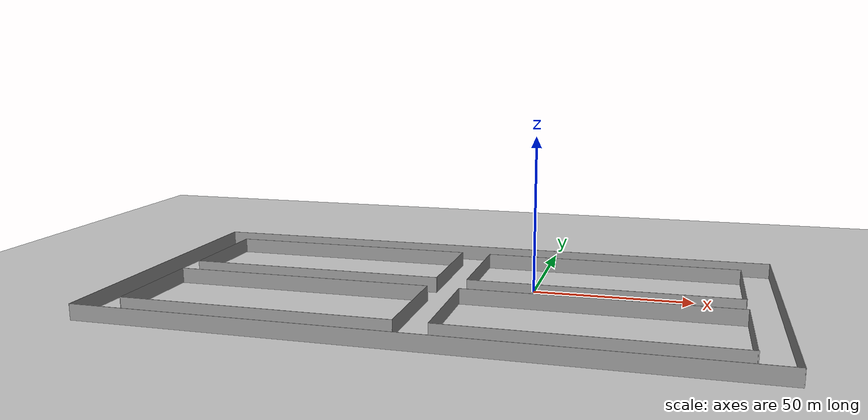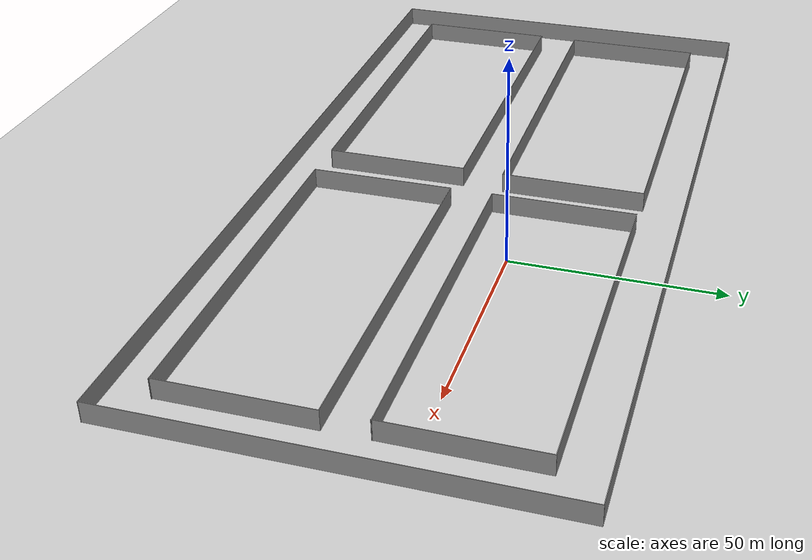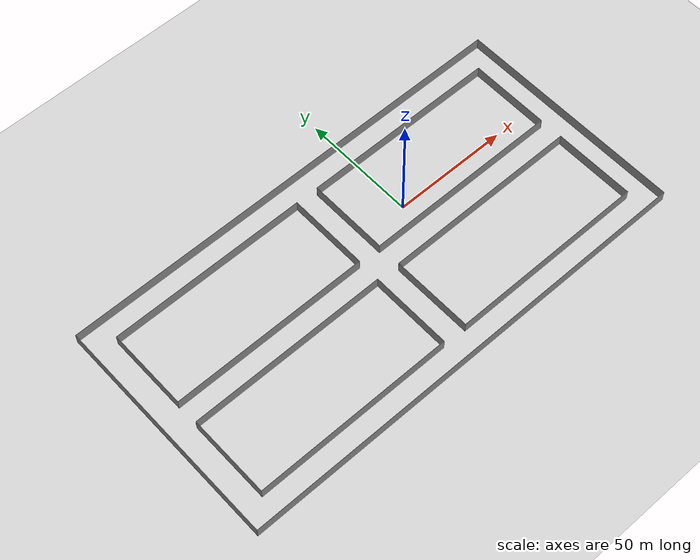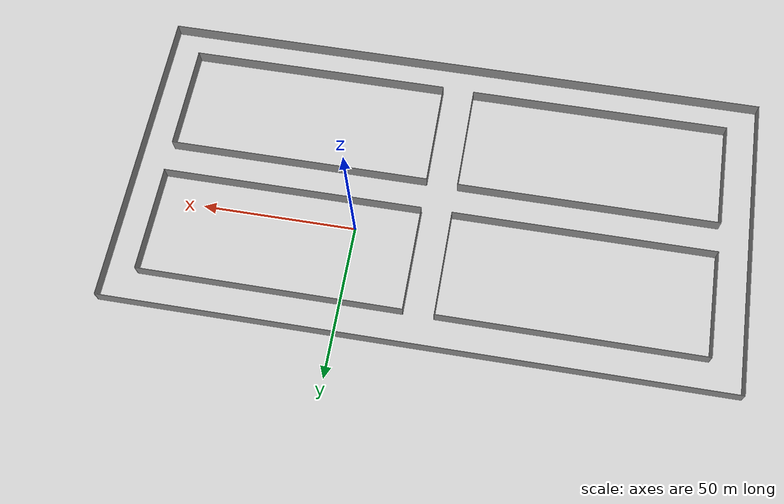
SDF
<?xml version="1.0"?>
<sdf version="1.6">
  <world name="default">
    <plugin
      filename="gz-sim-physics-system"
      name="gz::sim::systems::Physics">
    </plugin>
    <plugin
      filename="gz-sim-user-commands-system"
      name="gz::sim::systems::UserCommands">
    </plugin>
    <plugin
      filename="gz-sim-scene-broadcaster-system"
      name="gz::sim::systems::SceneBroadcaster">
    </plugin>
    <plugin
      filename="gz-sim-sensors-system"
      name="gz::sim::systems::Sensors">
      <render_engine>ogre2</render_engine>
    </plugin>
    <plugin
      filename="gz-sim-imu-system"
      name="gz::sim::systems::Imu">
    </plugin>

    <include>
      <uri>
        https://fuel.gazebosim.org/1.0/OpenRobotics/models/Ground Plane
      </uri>
    </include>

    <include>
      <uri>
        https://fuel.gazebosim.org/1.0/OpenRobotics/models/Sun
      </uri>
    </include>
    <include>
      <!-- make the location setting to something like this : filename="package://roshai_gazebo ... -->
      <uri>
        /home/roshai/sim_ws/src/roshai_pkgs/roshai_gazebo/worlds/Model4
      </uri>
     </include>
    <scene>
      <shadows>false</shadows>
    </scene>

    <gui fullscreen='0'>
      <camera name='user_camera'>
        <pose frame=''>0.319654 -0.235002 9.29441 0 1.5138 0.009599</pose>
        <view_controller>orbit</view_controller>
        <projection_type>perspective</projection_type>
      </camera>
    </gui>

    <physics type="ode">
      <real_time_update_rate>1000.0</real_time_update_rate>
      <max_step_size>0.001</max_step_size>
      <real_time_factor>1</real_time_factor>
      <ode>
        <solver>
          <type>quick</type>
          <iters>150</iters>
          <precon_iters>0</precon_iters>
          <sor>1.400000</sor>
          <use_dynamic_moi_rescaling>1</use_dynamic_moi_rescaling>
        </solver>
        <constraints>
          <cfm>0.00001</cfm>
          <erp>0.2</erp>
          <contact_max_correcting_vel>2000.000000</contact_max_correcting_vel>
          <contact_surface_layer>0.01000</contact_surface_layer>
        </constraints>
      </ode>
    </physics>

  </world>
</sdf>

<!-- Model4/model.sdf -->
<sdf version='1.7'>
  <model name='Model4'>
    <pose>-25.3121 -13.5777 0 0 -0 0</pose>
    <link name='Wall_102'>
      <collision name='Wall_102_Collision'>
        <geometry>
          <box>
            <size>85 0.15 5</size>
          </box>
        </geometry>
        <pose>0 0 2.5 0 -0 0</pose>
      </collision>
      <visual name='Wall_102_Visual'>
        <pose>0 0 2.5 0 -0 0</pose>
        <geometry>
          <box>
            <size>85 0.15 5</size>
          </box>
        </geometry>
        <material>
          <script>
            <uri>file://media/materials/scripts/gazebo.material</uri>
            <name>Gazebo/Grey</name>
          </script>
          <ambient>1 1 1 1</ambient>
        </material>
        <meta>
          <layer>0</layer>
        </meta>
      </visual>
      <pose>-47.154 4.80195 0 0 -0 -5e-06</pose>
    </link>
    <link name='Wall_104'>
      <collision name='Wall_104_Collision'>
        <geometry>
          <box>
            <size>35 0.15 5</size>
          </box>
        </geometry>
        <pose>0 0 2.5 0 -0 0</pose>
      </collision>
      <visual name='Wall_104_Visual'>
        <pose>0 0 2.5 0 -0 0</pose>
        <geometry>
          <box>
            <size>35 0.15 5</size>
          </box>
        </geometry>
        <material>
          <script>
            <uri>file://media/materials/scripts/gazebo.material</uri>
            <name>Gazebo/Grey</name>
          </script>
          <ambient>1 1 1 1</ambient>
        </material>
        <meta>
          <layer>0</layer>
        </meta>
      </visual>
      <pose>-4.72888 22.2267 0 0 -0 -1.5708</pose>
    </link>
    <link name='Wall_110'>
      <collision name='Wall_110_Collision'>
        <geometry>
          <box>
            <size>85 0.15 5</size>
          </box>
        </geometry>
        <pose>0 0 2.5 0 -0 0</pose>
      </collision>
      <visual name='Wall_110_Visual'>
        <pose>0 0 2.5 0 -0 0</pose>
        <geometry>
          <box>
            <size>85 0.15 5</size>
          </box>
        </geometry>
        <material>
          <script>
            <uri>file://media/materials/scripts/gazebo.material</uri>
            <name>Gazebo/Grey</name>
          </script>
          <ambient>1 1 1 1</ambient>
        </material>
        <meta>
          <layer>0</layer>
        </meta>
      </visual>
      <pose>-47.3691 -5.33039 0 0 -0 0</pose>
    </link>
    <link name='Wall_112'>
      <collision name='Wall_112_Collision'>
        <geometry>
          <box>
            <size>35 0.15 5</size>
          </box>
        </geometry>
        <pose>0 0 2.5 0 -0 0</pose>
      </collision>
      <visual name='Wall_112_Visual'>
        <pose>0 0 2.5 0 -0 0</pose>
        <geometry>
          <box>
            <size>35 0.15 5</size>
          </box>
        </geometry>
        <material>
          <script>
            <uri>file://media/materials/scripts/gazebo.material</uri>
            <name>Gazebo/Grey</name>
          </script>
          <ambient>1 1 1 1</ambient>
        </material>
        <meta>
          <layer>0</layer>
        </meta>
      </visual>
      <pose>-89.7941 -22.7554 0 0 -0 -1.5708</pose>
    </link>
    <link name='Wall_116'>
      <collision name='Wall_116_Collision'>
        <geometry>
          <box>
            <size>85 0.15 5</size>
          </box>
        </geometry>
        <pose>0 0 2.5 0 -0 0</pose>
      </collision>
      <visual name='Wall_116_Visual'>
        <pose>0 0 2.5 0 -0 0</pose>
        <geometry>
          <box>
            <size>85 0.15 5</size>
          </box>
        </geometry>
        <material>
          <script>
            <uri>file://media/materials/scripts/gazebo.material</uri>
            <name>Gazebo/Grey</name>
          </script>
          <ambient>1 1 1 1</ambient>
        </material>
        <meta>
          <layer>0</layer>
        </meta>
      </visual>
      <pose>-47.3691 -40.1804 0 0 -0 0</pose>
    </link>
    <link name='Wall_118'>
      <collision name='Wall_118_Collision'>
        <geometry>
          <box>
            <size>35 0.15 5</size>
          </box>
        </geometry>
        <pose>0 0 2.5 0 -0 0</pose>
      </collision>
      <visual name='Wall_118_Visual'>
        <pose>0 0 2.5 0 -0 0</pose>
        <geometry>
          <box>
            <size>35 0.15 5</size>
          </box>
        </geometry>
        <material>
          <script>
            <uri>file://media/materials/scripts/gazebo.material</uri>
            <name>Gazebo/Grey</name>
          </script>
          <ambient>1 1 1 1</ambient>
        </material>
        <meta>
          <layer>0</layer>
        </meta>
      </visual>
      <pose>-4.94413 -22.7554 0 0 -0 -1.5708</pose>
    </link>
    <link name='Wall_125'>
      <collision name='Wall_125_Collision'>
        <geometry>
          <box>
            <size>35 0.15 5</size>
          </box>
        </geometry>
        <pose>0 0 2.5 0 -0 0</pose>
      </collision>
      <visual name='Wall_125_Visual'>
        <pose>0 0 2.5 0 -0 0</pose>
        <geometry>
          <box>
            <size>35 0.15 5</size>
          </box>
        </geometry>
        <material>
          <script>
            <uri>file://media/materials/scripts/gazebo.material</uri>
            <name>Gazebo/Grey</name>
          </script>
          <ambient>1 1 1 1</ambient>
        </material>
        <meta>
          <layer>0</layer>
        </meta>
      </visual>
      <pose>5.18453 22.1453 0 0 -0 -1.5708</pose>
    </link>
    <link name='Wall_127'>
      <collision name='Wall_127_Collision'>
        <geometry>
          <box>
            <size>85 0.15 5</size>
          </box>
        </geometry>
        <pose>0 0 2.5 0 -0 0</pose>
      </collision>
      <visual name='Wall_127_Visual'>
        <pose>0 0 2.5 0 -0 0</pose>
        <geometry>
          <box>
            <size>85 0.15 5</size>
          </box>
        </geometry>
        <material>
          <script>
            <uri>file://media/materials/scripts/gazebo.material</uri>
            <name>Gazebo/Grey</name>
          </script>
          <ambient>1 1 1 1</ambient>
        </material>
        <meta>
          <layer>0</layer>
        </meta>
      </visual>
      <pose>47.6095 39.5232 0 0 -0 -0.00111</pose>
    </link>
    <link name='Wall_132'>
      <collision name='Wall_132_Collision'>
        <geometry>
          <box>
            <size>35 0.15 5</size>
          </box>
        </geometry>
        <pose>0 0 2.5 0 -0 0</pose>
      </collision>
      <visual name='Wall_132_Visual'>
        <pose>0 0 2.5 0 -0 0</pose>
        <geometry>
          <box>
            <size>35 0.15 5</size>
          </box>
        </geometry>
        <material>
          <script>
            <uri>file://media/materials/scripts/gazebo.material</uri>
            <name>Gazebo/Grey</name>
          </script>
          <ambient>1 1 1 1</ambient>
        </material>
        <meta>
          <layer>0</layer>
        </meta>
      </visual>
      <pose>89.9875 22.0512 0 0 -0 -1.5735</pose>
    </link>
    <link name='Wall_134'>
      <collision name='Wall_134_Collision'>
        <geometry>
          <box>
            <size>85 0.15 5</size>
          </box>
        </geometry>
        <pose>0 0 2.5 0 -0 0</pose>
      </collision>
      <visual name='Wall_134_Visual'>
        <pose>0 0 2.5 0 -0 0</pose>
        <geometry>
          <box>
            <size>85 0.15 5</size>
          </box>
        </geometry>
        <material>
          <script>
            <uri>file://media/materials/scripts/gazebo.material</uri>
            <name>Gazebo/Grey</name>
          </script>
          <ambient>1 1 1 1</ambient>
        </material>
        <meta>
          <layer>0</layer>
        </meta>
      </visual>
      <pose>47.6095 4.72031 0 0 -0 0</pose>
    </link>
    <link name='Wall_136'>
      <collision name='Wall_136_Collision'>
        <geometry>
          <box>
            <size>35 0.15 5</size>
          </box>
        </geometry>
        <pose>0 0 2.5 0 -0 0</pose>
      </collision>
      <visual name='Wall_136_Visual'>
        <pose>0 0 2.5 0 -0 0</pose>
        <geometry>
          <box>
            <size>35 0.15 5</size>
          </box>
        </geometry>
        <material>
          <script>
            <uri>file://media/materials/scripts/gazebo.material</uri>
            <name>Gazebo/Grey</name>
          </script>
          <ambient>1 1 1 1</ambient>
        </material>
        <meta>
          <layer>0</layer>
        </meta>
      </visual>
      <pose>5.31914 -23.0153 0 0 -0 -1.56536</pose>
    </link>
    <link name='Wall_139'>
      <collision name='Wall_139_Collision'>
        <geometry>
          <box>
            <size>85 0.15 5</size>
          </box>
        </geometry>
        <pose>0 0 2.5 0 -0 0</pose>
      </collision>
      <visual name='Wall_139_Visual'>
        <pose>0 0 2.5 0 -0 0</pose>
        <geometry>
          <box>
            <size>85 0.15 5</size>
          </box>
        </geometry>
        <material>
          <script>
            <uri>file://media/materials/scripts/gazebo.material</uri>
            <name>Gazebo/Grey</name>
          </script>
          <ambient>1 1 1 1</ambient>
        </material>
        <meta>
          <layer>0</layer>
        </meta>
      </visual>
      <pose>47.6495 -5.59027 0 0 -0 0</pose>
    </link>
    <link name='Wall_141'>
      <collision name='Wall_141_Collision'>
        <geometry>
          <box>
            <size>85 0.15 5</size>
          </box>
        </geometry>
        <pose>0 0 2.5 0 -0 0</pose>
      </collision>
      <visual name='Wall_141_Visual'>
        <pose>0 0 2.5 0 -0 0</pose>
        <geometry>
          <box>
            <size>85 0.15 5</size>
          </box>
        </geometry>
        <material>
          <script>
            <uri>file://media/materials/scripts/gazebo.material</uri>
            <name>Gazebo/Grey</name>
          </script>
          <ambient>1 1 1 1</ambient>
        </material>
        <meta>
          <layer>0</layer>
        </meta>
      </visual>
      <pose>47.8388 -40.4403 0 0 -0 0</pose>
    </link>
    <link name='Wall_143'>
      <collision name='Wall_143_Collision'>
        <geometry>
          <box>
            <size>35 0.15 5</size>
          </box>
        </geometry>
        <pose>0 0 2.5 0 -0 0</pose>
      </collision>
      <visual name='Wall_143_Visual'>
        <pose>0 0 2.5 0 -0 0</pose>
        <geometry>
          <box>
            <size>35 0.15 5</size>
          </box>
        </geometry>
        <material>
          <script>
            <uri>file://media/materials/scripts/gazebo.material</uri>
            <name>Gazebo/Grey</name>
          </script>
          <ambient>1 1 1 1</ambient>
        </material>
        <meta>
          <layer>0</layer>
        </meta>
      </visual>
      <pose>90.0745 -23.0153 0 0 -0 -1.5708</pose>
    </link>
    <link name='Wall_78'>
      <collision name='Wall_78_Collision'>
        <geometry>
          <box>
            <size>200 0.15 5</size>
          </box>
        </geometry>
        <pose>0 0 2.5 0 -0 0</pose>
      </collision>
      <visual name='Wall_78_Visual'>
        <pose>0 0 2.5 0 -0 0</pose>
        <geometry>
          <box>
            <size>200 0.15 5</size>
          </box>
        </geometry>
        <material>
          <script>
            <uri>file://media/materials/scripts/gazebo.material</uri>
            <name>Gazebo/Grey</name>
          </script>
          <ambient>1 1 1 1</ambient>
        </material>
        <meta>
          <layer>0</layer>
        </meta>
      </visual>
      <pose>4e-06 -49.925 0 0 -0 0</pose>
    </link>
    <link name='Wall_80'>
      <collision name='Wall_80_Collision'>
        <geometry>
          <box>
            <size>100 0.15 5</size>
          </box>
        </geometry>
        <pose>0 0 2.5 0 -0 0</pose>
      </collision>
      <visual name='Wall_80_Visual'>
        <pose>0 0 2.5 0 -0 0</pose>
        <geometry>
          <box>
            <size>100 0.15 5</size>
          </box>
        </geometry>
        <material>
          <script>
            <uri>file://media/materials/scripts/gazebo.material</uri>
            <name>Gazebo/Grey</name>
          </script>
          <ambient>1 1 1 1</ambient>
        </material>
        <meta>
          <layer>0</layer>
        </meta>
      </visual>
      <pose>-99.925 0 0 0 -0 1.5708</pose>
    </link>
    <link name='Wall_86'>
      <collision name='Wall_86_Collision'>
        <geometry>
          <box>
            <size>200 0.15 5</size>
          </box>
        </geometry>
        <pose>0 0 2.5 0 -0 0</pose>
      </collision>
      <visual name='Wall_86_Visual'>
        <pose>0 0 2.5 0 -0 0</pose>
        <geometry>
          <box>
            <size>200 0.15 5</size>
          </box>
        </geometry>
        <material>
          <script>
            <uri>file://media/materials/scripts/gazebo.material</uri>
            <name>Gazebo/Grey</name>
          </script>
          <ambient>1 1 1 1</ambient>
        </material>
        <meta>
          <layer>0</layer>
        </meta>
      </visual>
      <pose>4e-06 49.925 0 0 -0 0</pose>
    </link>
    <link name='Wall_88'>
      <collision name='Wall_88_Collision'>
        <geometry>
          <box>
            <size>100 0.15 5</size>
          </box>
        </geometry>
        <pose>0 0 2.5 0 -0 0</pose>
      </collision>
      <visual name='Wall_88_Visual'>
        <pose>0 0 2.5 0 -0 0</pose>
        <geometry>
          <box>
            <size>100 0.15 5</size>
          </box>
        </geometry>
        <material>
          <script>
            <uri>file://media/materials/scripts/gazebo.material</uri>
            <name>Gazebo/Grey</name>
          </script>
          <ambient>1 1 1 1</ambient>
        </material>
        <meta>
          <layer>0</layer>
        </meta>
      </visual>
      <pose>99.925 0 0 0 -0 -1.5708</pose>
    </link>
    <link name='Wall_96'>
      <collision name='Wall_96_Collision'>
        <geometry>
          <box>
            <size>85 0.15 5</size>
          </box>
        </geometry>
        <pose>0 0 2.5 0 -0 0</pose>
      </collision>
      <visual name='Wall_96_Visual'>
        <pose>0 0 2.5 0 -0 0</pose>
        <geometry>
          <box>
            <size>85 0.15 5</size>
          </box>
        </geometry>
        <material>
          <script>
            <uri>file://media/materials/scripts/gazebo.material</uri>
            <name>Gazebo/Grey</name>
          </script>
          <ambient>1 1 1 1</ambient>
        </material>
        <meta>
          <layer>0</layer>
        </meta>
      </visual>
      <pose>-47.154 39.6519 0 0 -0 -5e-06</pose>
    </link>
    <link name='Wall_98'>
      <collision name='Wall_98_Collision'>
        <geometry>
          <box>
            <size>35 0.15 5</size>
          </box>
        </geometry>
        <pose>0 0 2.5 0 -0 0</pose>
      </collision>
      <visual name='Wall_98_Visual'>
        <pose>0 0 2.5 0 -0 0</pose>
        <geometry>
          <box>
            <size>35 0.15 5</size>
          </box>
        </geometry>
        <material>
          <script>
            <uri>file://media/materials/scripts/gazebo.material</uri>
            <name>Gazebo/Grey</name>
          </script>
          <ambient>1 1 1 1</ambient>
        </material>
        <meta>
          <layer>0</layer>
        </meta>
      </visual>
      <pose>-89.5791 22.2272 0 0 -0 -1.5708</pose>
    </link>
    <static>1</static>
  </model>
</sdf>
